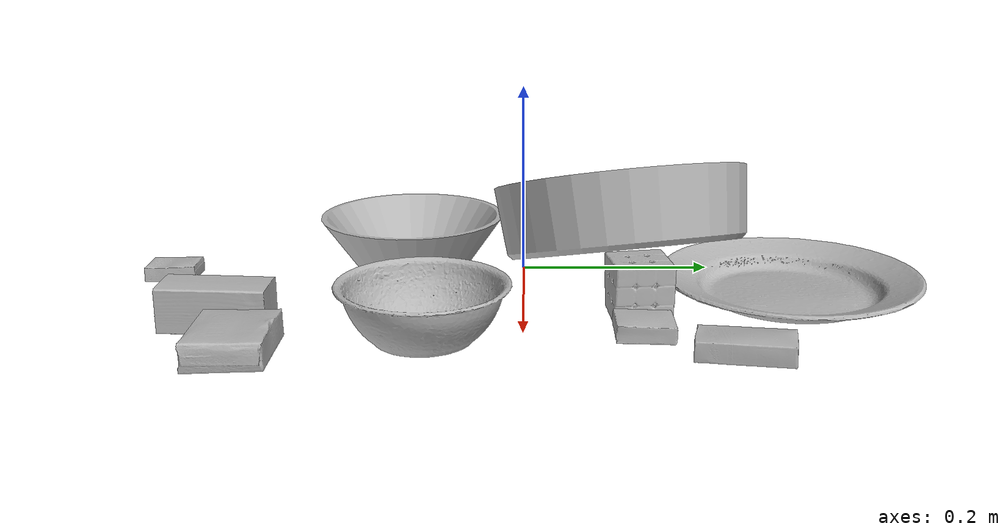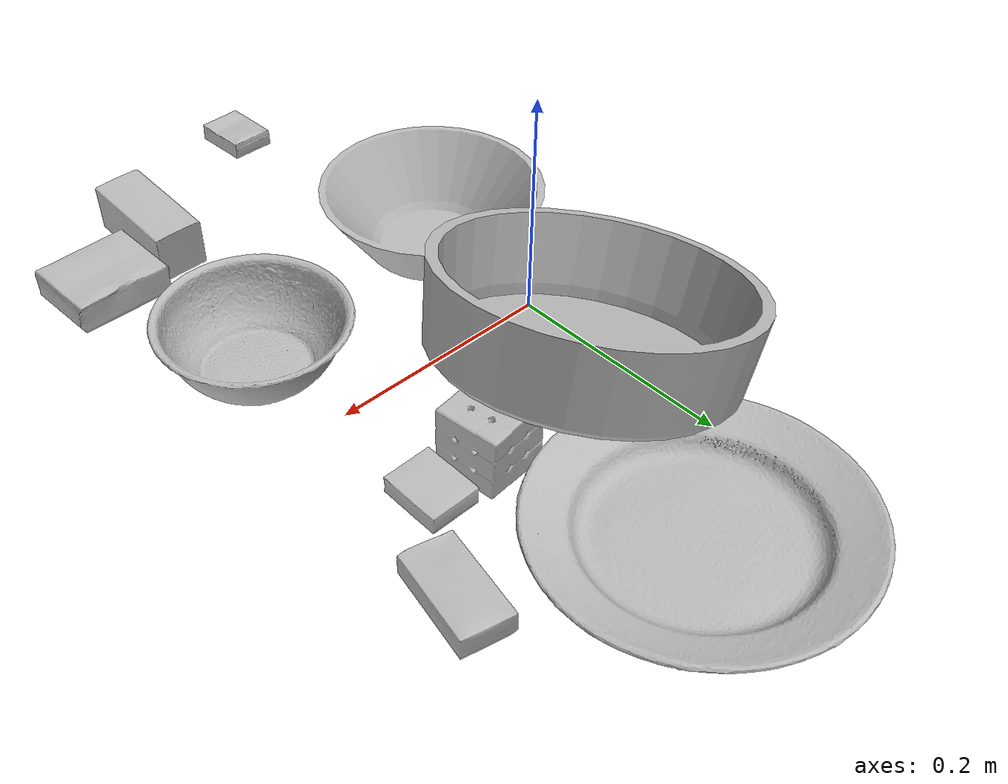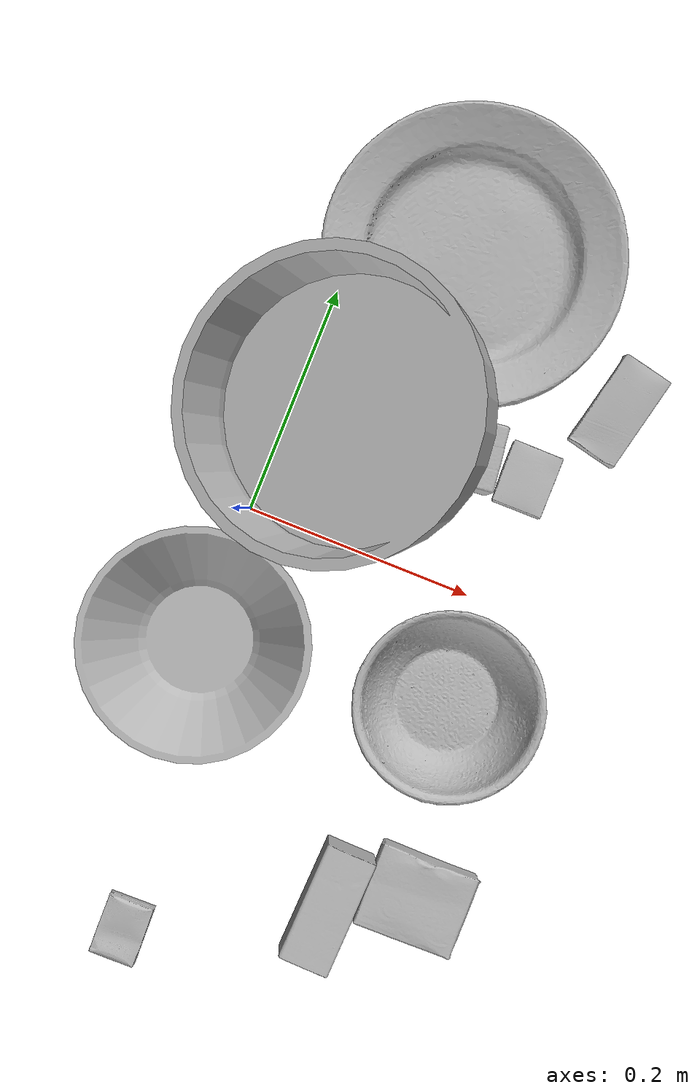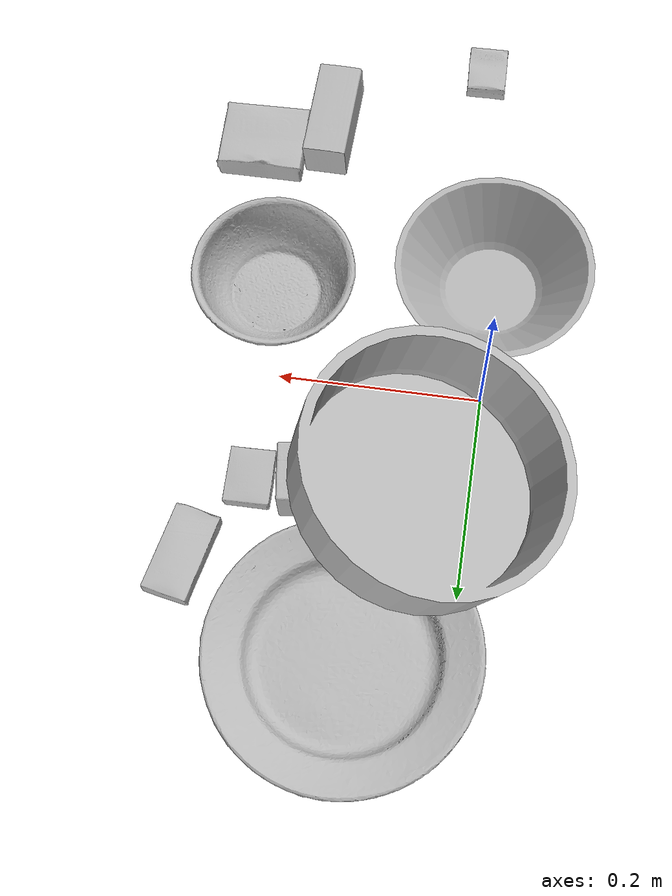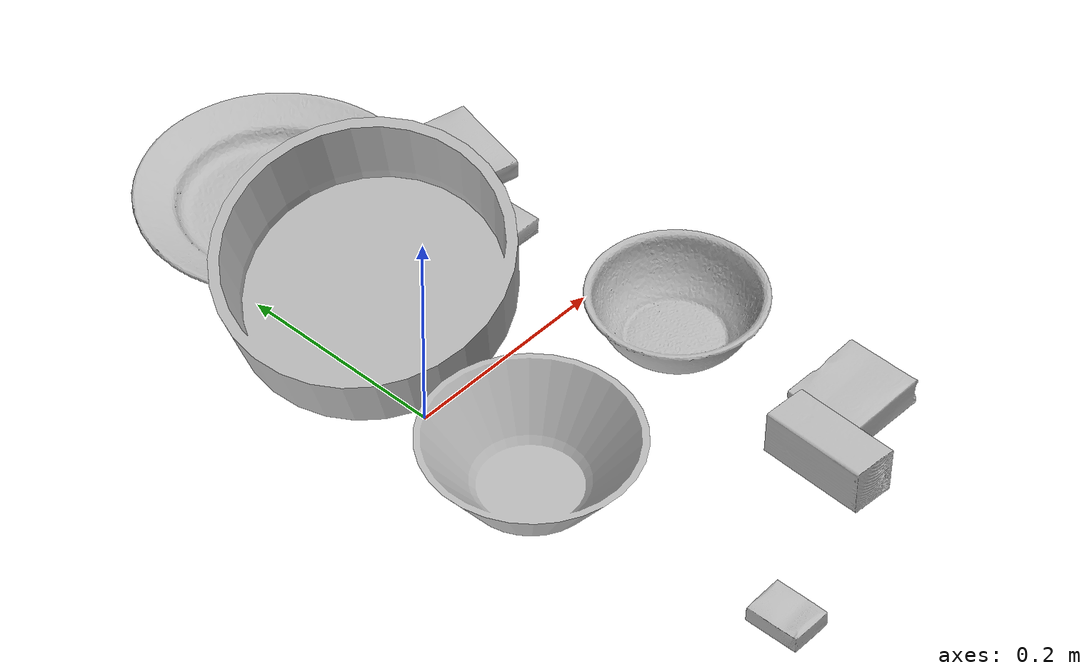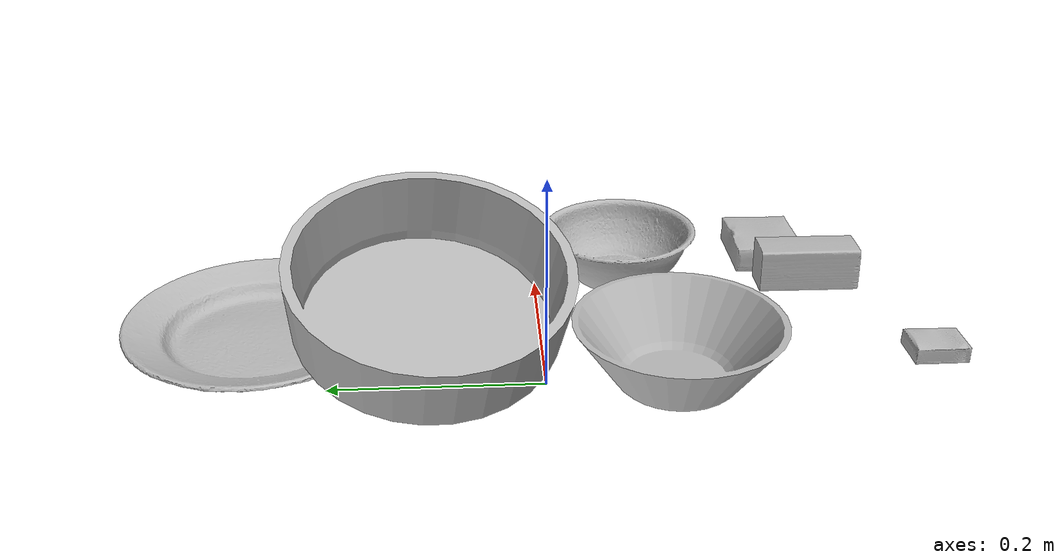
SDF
<sdf version="1.4">
  <world name="default">
    <light name="light1" type="point">
      <pose>0 0 1 0 0 0</pose>
      <diffuse>3 3 3 1</diffuse>
      <specular>3 3 3 1</specular>
    </light>
    <light name="light2" type="point">
      <pose>0 0.5 2 0 0 0</pose>
      <diffuse>1 1 1 1</diffuse>
      <specular>1 1 1 1</specular>
    </light>
    <light name="light3" type="point">
      <pose>0 0.5 2 0 0 0</pose>
      <diffuse>3 3 3 1</diffuse>
      <specular>3 3 3 1</specular>
    </light>
    <scene>
      <ambient>0.7 0.7 0.7</ambient>
    </scene>
    <model name="box1">
      <link name="link_box1">
        <collision name="default">
          <geometry>
            <mesh>
              <uri>model://gelatin_box/collision_meshes/collision.obj</uri>
              <scale>1.0 1.0 1.0</scale>
            </mesh>
          </geometry>
          <surface>
            <friction>
              <ode>
                <mu>0.5</mu>
                <mu2>0.5</mu2>
              </ode>
            </friction>
          <contact>
        <ode>
            <max_vel>0</max_vel>
            <min_depth>0.0001</min_depth>
            <kp>1e8</kp>
        </ode>
    </contact></surface>
        </collision>
        <visual name="default">
          <geometry>
            <mesh>
              <uri>model://gelatin_box/visual_meshes/visual.dae</uri>
              <scale>1.0 1.0 1.0</scale>
            </mesh>
          </geometry>
        </visual>
        <inertial>
          <mass>0.24885821342468262</mass>
          <pose>0.0004319618456065655 0.00011156872642459348 -0.0003640321083366871 -0.0010503721884538221 -0.004755817759936981 0.016440553883063976</pose>
          <inertia>
            <ixx>0.0001756736</ixx>
            <iyy>0.00012548274</iyy>
            <izz>0.00026741438</izz>
            <ixy>0</ixy>
            <ixz>0</ixz>
            <iyz>0</iyz>
          </inertia>
        </inertial>
      </link>
      <pose>0.25531017780303955 -0.25482311844825745 0.01516831386834383 0.005595005513840481 -0.007303387562921304 1.5707564909794445</pose>
    </model>
    <model name="box11">
      <link name="link_box11">
        <collision name="default">
          <geometry>
            <mesh>
              <uri>model://pudding_box/collision_meshes/collision.obj</uri>
              <scale>0.5 0.5 0.5</scale>
            </mesh>
          </geometry>
          <surface>
            <friction>
              <ode>
                <mu>0.5</mu>
                <mu2>0.5</mu2>
              </ode>
            </friction>
          <contact>
        <ode>
            <max_vel>0</max_vel>
            <min_depth>0.0001</min_depth>
            <kp>1e8</kp>
        </ode>
    </contact></surface>
        </collision>
        <visual name="default">
          <geometry>
            <mesh>
              <uri>model://pudding_box/visual_meshes/visual.dae</uri>
              <scale>0.5 0.5 0.5</scale>
            </mesh>
          </geometry>
        </visual>
        <inertial>
          <mass>0.031047143042087555</mass>
          <pose>0.00024474109522998333 0.00040339428232982755 -0.0002594413817860186 0.005213102716306955 -0.006603798272123425 0.020079828883677098</pose>
          <inertia>
            <ixx>8.774299e-06</ixx>
            <iyy>5.903411e-06</iyy>
            <izz>1.2957546e-05</izz>
            <ixy>0</ixy>
            <ixz>0</ixz>
            <iyz>0</iyz>
          </inertia>
        </inertial>
      </link>
      <pose>0.20987392961978912 0.11102436482906342 0.009862900711596012 0.0223485316242234 -0.011391629046001418 -3.1384685962641026</pose>
    </model>
    <model name="box2">
      <link name="link_box2">
        <collision name="default">
          <geometry>
            <mesh>
              <uri>model://rubiks_cube/collision_meshes/collision.obj</uri>
              <scale>1.0 1.0 1.0</scale>
            </mesh>
          </geometry>
          <surface>
            <friction>
              <ode>
                <mu>0.5</mu>
                <mu2>0.5</mu2>
              </ode>
            </friction>
          <contact>
        <ode>
            <max_vel>0</max_vel>
            <min_depth>0.0001</min_depth>
            <kp>1e8</kp>
        </ode>
    </contact></surface>
        </collision>
        <visual name="default">
          <geometry>
            <mesh>
              <uri>model://rubiks_cube/visual_meshes/visual.dae</uri>
              <scale>1.0 1.0 1.0</scale>
            </mesh>
          </geometry>
        </visual>
        <inertial>
          <mass>0.2106715589761734</mass>
          <pose>2.6721041649580002e-05 5.2569666877388954e-05 -7.264316536748083e-06 -0.05467273700930805 -0.09814071961497198 -0.03445608496414611</pose>
          <inertia>
            <ixx>0.0001164102</ixx>
            <iyy>0.000115867326</iyy>
            <izz>0.00011737483</izz>
            <ixy>0</ixy>
            <ixz>0</ixz>
            <iyz>0</iyz>
          </inertia>
        </inertial>
      </link>
      <pose>0.15242978930473328 0.11137188225984573 0.0286859180778265 -0.007917885058592448 -0.007689326447425333 -3.018192822269642</pose>
    </model>
    <model name="box21">
      <link name="link_box21">
        <collision name="default">
          <geometry>
            <mesh>
              <uri>model://wood_block/collision_meshes/collision.obj</uri>
              <scale>0.5 0.5 0.5</scale>
            </mesh>
          </geometry>
          <surface>
            <friction>
              <ode>
                <mu>0.5</mu>
                <mu2>0.5</mu2>
              </ode>
            </friction>
          <contact>
        <ode>
            <max_vel>0</max_vel>
            <min_depth>0.0001</min_depth>
            <kp>1e8</kp>
        </ode>
    </contact></surface>
        </collision>
        <visual name="default">
          <geometry>
            <mesh>
              <uri>model://wood_block/visual_meshes/visual.dae</uri>
              <scale>0.5 0.5 0.5</scale>
            </mesh>
          </geometry>
        </visual>
        <inertial>
          <mass>0.146076962351799</mass>
          <pose>-2.9066577553749084e-06 -0.000285404734313488 0.00013204291462898254 -0.052208177866913126 -0.0051926955252411455 -0.006861378006552687</pose>
          <inertia>
            <ixx>4.8868267e-05</ixx>
            <iyy>0.00015437487</iyy>
            <izz>0.00015379742</izz>
            <ixy>0</ixy>
            <ixz>0</ixz>
            <iyz>0</iyz>
          </inertia>
        </inertial>
      </link>
      <pose>0.18659964203834534 -0.28630882501602173 0.0225260928273201 -0.036039986135625125 -0.008280311069092194 -1.6058803627657636</pose>
    </model>
    <model name="box3">
      <link name="link_box3">
        <collision name="default">
          <geometry>
            <mesh>
              <uri>model://cracker_box/collision_meshes/collision.obj</uri>
              <scale>0.25 0.25 0.25</scale>
            </mesh>
          </geometry>
          <surface>
            <friction>
              <ode>
                <mu>0.5</mu>
                <mu2>0.5</mu2>
              </ode>
            </friction>
          <contact>
        <ode>
            <max_vel>0</max_vel>
            <min_depth>0.0001</min_depth>
            <kp>1e8</kp>
        </ode>
    </contact></surface>
        </collision>
        <visual name="default">
          <geometry>
            <mesh>
              <uri>model://cracker_box/visual_meshes/visual.dae</uri>
              <scale>0.25 0.25 0.25</scale>
            </mesh>
          </geometry>
        </visual>
        <inertial>
          <mass>0.0398951955139637</mass>
          <pose>0.0002366032567806542 6.358561950037256e-05 -0.0004257383698131889 -0.00031620768741309833 -0.011106487737478729 0.0025467957005107203</pose>
          <inertia>
            <ixx>6.342223e-06</ixx>
            <iyy>1.0472255e-05</iyy>
            <izz>1.494487e-05</izz>
            <ixy>0</ixy>
            <ixz>0</ixz>
            <iyz>0</iyz>
          </inertia>
        </inertial>
      </link>
      <pose>0.032684143632650375 -0.37278565764427185 0.009096031077206135 -0.014050195104965543 -0.00501642159752401 1.5938963645243676</pose>
    </model>
    <model name="box31">
      <link name="link_box31">
        <collision name="default">
          <geometry>
            <mesh>
              <uri>model://sugar_box/collision_meshes/collision.obj</uri>
              <scale>0.5 0.5 0.5</scale>
            </mesh>
          </geometry>
          <surface>
            <friction>
              <ode>
                <mu>0.5</mu>
                <mu2>0.5</mu2>
              </ode>
            </friction>
          <contact>
        <ode>
            <max_vel>0</max_vel>
            <min_depth>0.0001</min_depth>
            <kp>1e8</kp>
        </ode>
    </contact></surface>
        </collision>
        <visual name="default">
          <geometry>
            <mesh>
              <uri>model://sugar_box/visual_meshes/visual.dae</uri>
              <scale>0.5 0.5 0.5</scale>
            </mesh>
          </geometry>
        </visual>
        <inertial>
          <mass>0.051384337246418</mass>
          <pose>0.0005171863595023751 1.924554817378521e-05 -0.00018182402709499002 -0.00040462574757428057 0.0010506634050244472 0.0026153787892360275</pose>
          <inertia>
            <ixx>1.070332e-05</ixx>
            <iyy>3.4595334e-05</iyy>
            <izz>4.1414743e-05</izz>
            <ixy>0</ixy>
            <ixz>0</ixz>
            <iyz>0</iyz>
          </inertia>
        </inertial>
      </link>
      <pose>0.2608935832977295 0.19369874894618988 0.011399303562939167 0.0007753064540265817 -0.02343258605497778 1.348739790233682</pose>
    </model>
    <model name="plate1">
      <link name="link_plate1">
        <collision name="default">
          <geometry>
            <mesh>
              <uri>model://plate/collision_meshes/collision.obj</uri>
              <scale>1.0 1.0 1.0</scale>
            </mesh>
          </geometry>
          <surface>
            <friction>
              <ode>
                <mu>0.5</mu>
                <mu2>0.5</mu2>
              </ode>
            </friction>
          <contact>
        <ode>
            <max_vel>0</max_vel>
            <min_depth>0.0001</min_depth>
            <kp>1e8</kp>
        </ode>
    </contact></surface>
        </collision>
        <visual name="default">
          <geometry>
            <mesh>
              <uri>model://plate/visual_meshes/visual.dae</uri>
              <scale>1.0 1.0 1.0</scale>
            </mesh>
          </geometry>
        </visual>
        <inertial>
          <mass>0.18845537304878235</mass>
          <pose>-0.0006044640904292464 0.00027825849247165024 -0.0010561994276940823 0.0022188128524267426 -0.0032254640251278745 0.45260123674794867</pose>
          <inertia>
            <ixx>0.0008815983</ixx>
            <iyy>0.00087316614</iyy>
            <izz>0.001724274</izz>
            <ixy>0</ixy>
            <ixz>0</ixz>
            <iyz>0</iyz>
          </inertia>
        </inertial>
      </link>
      <pose>0.09726149588823318 0.2694735527038574 0.01373930275440216 -7.172938349290847e-05 -4.7820438584993043e-05 1.5116410518781531</pose>
    </model>
    <model name="bowl1">
      <link name="link_bowl1">
        <collision name="default">
          <geometry>
            <mesh>
              <uri>model://bowl_a/collision_meshes/collision.obj</uri>
              <scale>1.0 1.0 1.0</scale>
            </mesh>
          </geometry>
          <surface>
            <friction>
              <ode>
                <mu>0.5</mu>
                <mu2>0.5</mu2>
              </ode>
            </friction>
          <contact>
        <ode>
            <max_vel>0</max_vel>
            <min_depth>0.0001</min_depth>
            <kp>1e8</kp>
        </ode>
    </contact></surface>
        </collision>
        <visual name="default">
          <geometry>
            <mesh>
              <uri>model://bowl_a/visual_meshes/visual.dae</uri>
              <scale>1.0 1.0 1.0</scale>
            </mesh>
          </geometry>
        </visual>
        <inertial>
          <mass>0.46761196851730347</mass>
          <pose>0.0002786737459246069 4.731199442176148e-05 -0.0013765295734629035 -0.0009805421566516771 -0.0010938164969012795 -0.19123134440759623</pose>
          <inertia>
            <ixx>0.0013313128</ixx>
            <iyy>0.0013394863</iyy>
            <izz>0.0023677913</izz>
            <ixy>0</ixy>
            <ixz>0</ixz>
            <iyz>0</iyz>
          </inertia>
        </inertial>
      </link>
      <pose>0.001904955948702991 -0.12024889886379242 0.03038257546722889 -1.8323359713015648e-05 -1.864950437865279e-06 0.558089955745862</pose>
    </model>
    <model name="plate2">
      <link name="link_plate2">
        <collision name="default">
          <geometry>
            <mesh>
              <uri>model://pan_tefal/collision_meshes/collision.obj</uri>
              <scale>1.0 1.0 1.0</scale>
            </mesh>
          </geometry>
          <surface>
            <friction>
              <ode>
                <mu>0.5</mu>
                <mu2>0.5</mu2>
              </ode>
            </friction>
          <contact>
        <ode>
            <max_vel>0</max_vel>
            <min_depth>0.0001</min_depth>
            <kp>1e8</kp>
        </ode>
    </contact></surface>
        </collision>
        <visual name="default">
          <geometry>
            <mesh>
              <uri>model://pan_tefal/visual_meshes/visual.dae</uri>
              <scale>1.0 1.0 1.0</scale>
            </mesh>
          </geometry>
        </visual>
        <inertial>
          <mass>0.7360396385192871</mass>
          <pose>-0.00018002057913690805 3.2791922421893105e-05 -0.00851493515074253 0.0008190284364517867 -0.0003301440136962699 -0.3318532577359739</pose>
          <inertia>
            <ixx>0.0050808466</ixx>
            <iyy>0.005113603</iyy>
            <izz>0.00935286</izz>
            <ixy>0</ixy>
            <ixz>0</ixz>
            <iyz>0</iyz>
          </inertia>
        </inertial>
      </link>
      <pose>0.04118488356471062 0.10448005050420761 0.07271824777126312 0.29839347256443177 0.06568929275575881 -1.4636791574933827</pose>
    </model>
    <model name="bowl2">
      <link name="link_bowl2">
        <collision name="default">
          <geometry>
            <mesh>
              <uri>model://bowl/collision_meshes/collision.obj</uri>
              <scale>1.0 1.0 1.0</scale>
            </mesh>
          </geometry>
          <surface>
            <friction>
              <ode>
                <mu>0.5</mu>
                <mu2>0.5</mu2>
              </ode>
            </friction>
          <contact>
        <ode>
            <max_vel>0</max_vel>
            <min_depth>0.0001</min_depth>
            <kp>1e8</kp>
        </ode>
    </contact></surface>
        </collision>
        <visual name="default">
          <geometry>
            <mesh>
              <uri>model://bowl/visual_meshes/visual.dae</uri>
              <scale>1.0 1.0 1.0</scale>
            </mesh>
          </geometry>
        </visual>
        <inertial>
          <mass>0.11974068731069565</mass>
          <pose>0.00020445311383809894 -0.0010302052833139896 -0.0008042640401981771 -0.015764214972767723 0.014546668027170537 0.7140316235505751</pose>
          <inertia>
            <ixx>0.00027505384</ixx>
            <iyy>0.000268908</iyy>
            <izz>0.00046273507</izz>
            <ixy>0</ixy>
            <ixz>0</ixz>
            <iyz>0</iyz>
          </inertia>
        </inertial>
      </link>
      <pose>0.21696621179580688 -0.09049968421459198 0.02778000757098198 1.803462160282182e-08 -5.329923247537789e-10 -0.6252212784414252</pose>
    </model>
  <physics type="ode">
      <max_contacts>50</max_contacts>
      <ode>
        <solver>
          <type>quick</type>
          <iters>75</iters>
        </solver>
        <constraints>
          <contact_max_correcting_vel>0</contact_max_correcting_vel>
          <contact_surface_layer>0</contact_surface_layer>
        </constraints>
      </ode>
    </physics></world>
</sdf>
